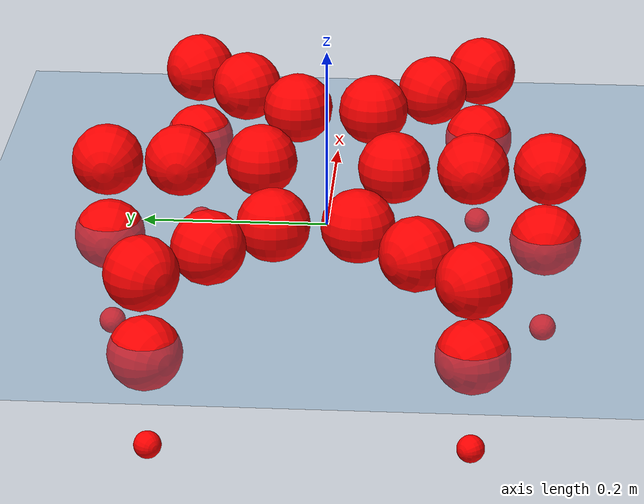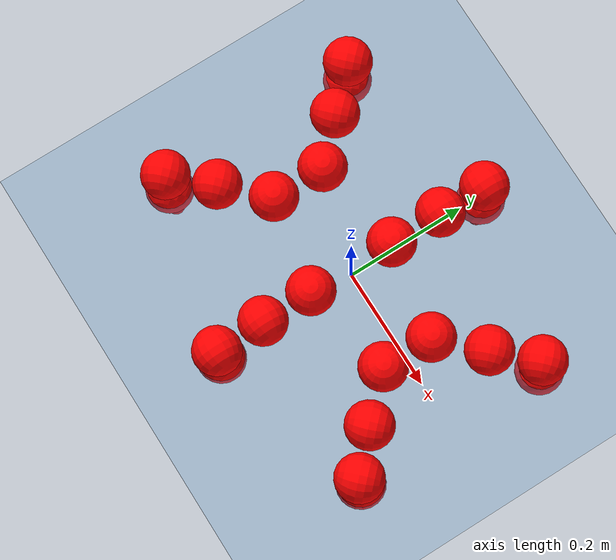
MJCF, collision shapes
<mujoco model="Golem">
  <compiler angle="radian" assetdir="assets" balanceinertia="true" inertiafromgeom="false"/>

  <option timestep="0.005" density="1.2" viscosity="2e-05"/>

  <size nkey="1"/>

  <visual>
    <quality shadowsize="8192"/>
    <map shadowclip="0.5"/>
  </visual>

  <default>
    <default class="/">
      <joint armature="0.01" damping="0.01" frictionloss="0.01"/>
      <geom contype="0" conaffinity="0" group="1" solref="-1000 -80"/>
      <site size="0.01 0.005 0.005" group="5"/>
      <general forcelimited="true" biastype="affine" gainprm="25" biasprm="0 -25 -0.5"/>
      <default class="visual">
        <geom type="mesh" group="2"/>
      </default>
      <default class="collision">
        <geom group="3"/>
      </default>
      <default class="foot">
        <geom size="0.01 0 0" condim="6" group="4" priority="1" solimp="0.015 1 0.01"/>
      </default>
      <default class="reward_collision_sphere">
        <geom group="5" rgba="1 0 0 1"/>
      </default>
    </default>
  </default>

  <asset>
    <texture type="skybox" colorspace="auto" name="//unnamed_texture_0" builtin="gradient" rgb1="0.95 0.95 0.95" rgb2="0.95 0.95 0.95" width="100" height="600"/>
    <texture type="2d" colorspace="auto" name="texplane" builtin="checker" rgb1="0.345 0.575 0.748" rgb2="0.345 0.575 0.748" markrgb="1 1 1" width="512" height="512"/>
    <material name="MatPlane" class="/" texture="texplane" texuniform="true" texrepeat="2 2" specular="0.9"/>
    <mesh name="body" class="/" file="body.stl" scale="0.001 0.001 0.001"/>
    <mesh name="coxa" class="/" file="coxa.stl" scale="0.001 0.001 0.001"/>
    <mesh name="femur" class="/" file="femur.stl" scale="0.001 0.001 0.001"/>
    <mesh name="tibia" class="/" file="tibia.stl" scale="0.001 0.001 0.001"/>
    <mesh name="tarsus" class="/" file="tarsus.stl" scale="0.001 0.001 0.001"/>
  </asset>

  <worldbody>
    <geom name="floor" class="/" size="100 100 0.125" type="plane" group="0" material="MatPlane"/>
    <light name="toplight_shadow" class="/" pos="0 0 5" dir="0.0990148 0.0990148 -0.990148" type="directional" ambient="0.04 0.04 0.04" diffuse="0.55 0.55 0.55" specular="0.12 0.12 0.12"/>
    <light name="toplight_fill" class="/" pos="0 0 5" dir="0.0990148 0.0990148 -0.990148" type="directional" castshadow="false" ambient="0.04 0.04 0.04" diffuse="0.3 0.3 0.3" specular="0.08 0.08 0.08"/>
    <body name="trunk" pos="0.000110126 0.000420213 -0.0026711" quat="1 -1.1689e-05 -3.15134e-06 1.2771e-05">
      <inertial pos="0.000761527 -7.22281e-05 -0.00128002" quat="0.999967 0.00298047 0.00750866 0.000981126" mass="3.46494" diaginertia="0.00884496 0.00267403 0.0211738"/>
      <joint name="//unnamed_joint_0" type="free"/>
      <geom name="//unnamed_geom_1" class="/" pos="0 0 0.074395" quat="1 0 0 0" type="mesh" rgba="0.9 0.9 0.9 1" mesh="body"/>
      <site name="imu" class="/" pos="0.129374 -0.000655427 0.110938" size="0.00969324"/>
      <camera name="track" class="/" pos="0 -1.52851 0" quat="0.707107 0.707107 0 0" mode="trackcom"/>
      <camera name="ego_camera" class="/" pos="0.127568 0 0.116242" quat="-0.5 -0.5 0.5 0.5"/>
      <body name="coxa_RR" pos="-0.174631 -0.0631821 0.0737107" quat="0.382704 0.00015304 -2.75868e-05 -0.923871">
        <inertial pos="-0.000231254 -0.00261328 0.000757136" quat="0.999989 0.000348746 -0.00297588 -0.0034902" mass="0.175684" diaginertia="0.00864251 0.0025985 0.020282"/>
        <joint name="coxa_joint_RR" class="/" pos="0 0 0" axis="-0.00745862 -0.0031407 -0.999967" range="-3.13837 3.11319" armature="0.00941741" damping="0.0124108" frictionloss="0.00959227"/>
        <geom name="//unnamed_geom_2" class="/" type="mesh" rgba="0.2 0.2 0.2 1" mesh="coxa"/>
        <geom name="//unnamed_geom_3" class="reward_collision_sphere" size="0.038773" pos="-0.0294389 0 0"/>
        <body name="femur_RR" pos="0.0591032 -0.000151357 -0.000442744" quat="0.499688 -0.499826 0.500335 0.500151">
          <inertial pos="0.00118489 0.000442546 -0.000380286" quat="0.999999 -0.000289758 0.00013351 -0.00145471" mass="0.181345" diaginertia="0.00908974 0.00259593 0.0210966"/>
          <joint name="femur_joint_RR" class="/" pos="0 0 0" axis="1.14352e-05 -0.00013743 -1" range="-3.16119 3.08819" armature="0.00900724" damping="0" frictionloss="0.0104419"/>
          <geom name="//unnamed_geom_4" class="/" type="mesh" rgba="0.9 0.9 0.9 1" mesh="femur"/>
          <geom name="//unnamed_geom_5" class="reward_collision_sphere" size="0.038773"/>
          <body name="tibia_RR" pos="0.00103937 -0.0808176 0.00250191" quat="5.7368e-05 1 3.13915e-05 3.45972e-05">
            <inertial pos="-0.00225092 -0.000788695 1.21123e-05" quat="0.999959 0.00282255 -0.00640339 -0.00571918" mass="0.181886" diaginertia="0.00896578 0.00262275 0.0215118"/>
            <joint name="tibia_joint_RR" class="/" pos="0 0 0" axis="-0.000331249 -0.000597822 1" range="-3.19254 3.14999" armature="0.00893265" damping="0" frictionloss="0.00973585"/>
            <geom name="//unnamed_geom_6" class="/" type="mesh" rgba="0.2 0.2 0.2 1" mesh="tibia"/>
            <geom name="//unnamed_geom_7" class="reward_collision_sphere" size="0.038773"/>
            <body name="tarsus_RR" pos="0.084493 0.000850122 -0.000277311" quat="1 8.588e-05 0.000468858 -0.000267069">
              <inertial pos="0.057235 0.00285669 -0.00153526" quat="0.5009 0.498596 0.502425 0.498066" mass="0.180409" diaginertia="0.00899125 0.00259316 0.0210733"/>
              <joint name="tarsus_joint_RR" class="/" pos="0 0 0" axis="-0.000643691 -0.00197369 0.999998" range="-3.14757 3.13866" armature="0.0106078" damping="0.00650333" frictionloss="0.0106508"/>
              <geom name="//unnamed_geom_8" class="/" type="mesh" rgba="0.9 0.9 0.9 1" mesh="tarsus"/>
              <geom name="foot_1" class="foot" size="0.00904395" pos="0.109905 0 0" quat="0 -0.707107 0 0.707107"/>
              <geom name="//unnamed_geom_10" class="reward_collision_sphere" size="0.038773"/>
              <geom name="//unnamed_geom_11" class="reward_collision_sphere" size="0.0145399" pos="0.105489 0 0"/>
              <site name="foot_1" class="foot" pos="0.109905 0 0" quat="0 -0.707107 0 0.707107" size="0.00969324"/>
            </body>
          </body>
        </body>
      </body>
      <body name="coxa_RM" pos="-0.000123151 -0.101892 0.0721828" quat="0.707155 -0.000949486 0.000989342 -0.707057">
        <inertial pos="-0.00227342 8.2758e-05 0.000532931" quat="0.999998 -0.000906765 -0.00161542 -0.000452345" mass="0.179083" diaginertia="0.00889687 0.00255532 0.0215194"/>
        <joint name="coxa_joint_RM" class="/" pos="0 0 0" axis="-0.00108126 -0.000250031 -0.999999" range="-3.19311 3.14643" armature="0.010155" damping="0.00890386" frictionloss="0.0097438"/>
        <geom name="//unnamed_geom_12" class="/" type="mesh" rgba="0.2 0.2 0.2 1" mesh="coxa"/>
        <geom name="//unnamed_geom_13" class="reward_collision_sphere" size="0.038773" pos="-0.0294389 0 0"/>
        <body name="femur_RM" pos="0.0556084 0.00084877 0.000530074" quat="0.499436 -0.500916 0.49948 0.500167">
          <inertial pos="-0.000174337 0.000388922 -0.000523334" quat="0.999927 -0.0092434 0.00599445 -0.00497738" mass="0.187365" diaginertia="0.00934633 0.00260977 0.0216856"/>
          <joint name="femur_joint_RM" class="/" pos="0 0 0" axis="0.00252971 3.35167e-05 -0.999997" range="-3.14592 3.14535" armature="0.00960839" damping="0.00896341" frictionloss="0.00996651"/>
          <geom name="//unnamed_geom_14" class="/" type="mesh" rgba="0.9 0.9 0.9 1" mesh="femur"/>
          <geom name="//unnamed_geom_15" class="reward_collision_sphere" size="0.038773"/>
          <body name="tibia_RM" pos="-0.00115822 -0.0820877 0.00184836" quat="0.000341496 1 -7.72978e-05 -0.000153045">
            <inertial pos="0.000993085 0.00221506 0.000616627" quat="0.999987 -0.00180496 0.00257788 0.00389743" mass="0.187935" diaginertia="0.00945922 0.00269559 0.0220806"/>
            <joint name="tibia_joint_RM" class="/" pos="0 0 0" axis="-0.00173291 0.00220225 0.999996" range="-3.11142 3.08723" armature="0.0097824" damping="0" frictionloss="0.00994482"/>
            <geom name="//unnamed_geom_16" class="/" type="mesh" rgba="0.2 0.2 0.2 1" mesh="tibia"/>
            <geom name="//unnamed_geom_17" class="reward_collision_sphere" size="0.038773"/>
            <body name="tarsus_RM" pos="0.0833248 -0.0026565 0.00099219" quat="1 0.000150409 -0.000727138 0.000370899">
              <inertial pos="0.0585039 0.00306058 -0.000584505" quat="0.500467 0.499888 0.49869 0.500953" mass="0.172528" diaginertia="0.0089496 0.00252416 0.0207757"/>
              <joint name="tarsus_joint_RM" class="/" pos="0 0 0" axis="-0.00268569 -0.000466467 0.999996" range="-3.14546 3.15603" armature="0.010026" damping="0.00308827" frictionloss="0.00966192"/>
              <geom name="//unnamed_geom_18" class="/" type="mesh" rgba="0.9 0.9 0.9 1" mesh="tarsus"/>
              <geom name="foot_2" class="foot" size="0.00952474" pos="0.109905 0 0" quat="0 -0.707107 0 0.707107"/>
              <geom name="//unnamed_geom_20" class="reward_collision_sphere" size="0.038773"/>
              <geom name="//unnamed_geom_21" class="reward_collision_sphere" size="0.0145399" pos="0.105489 0 0"/>
              <site name="foot_2" class="foot" pos="0.109905 0 0" quat="0 -0.707107 0 0.707107" size="0.00969324"/>
            </body>
          </body>
        </body>
      </body>
      <body name="coxa_RF" pos="0.1764 -0.0634768 0.0736908" quat="0.923772 0.000123606 -0.000671927 -0.382941">
        <inertial pos="-0.00248717 -0.00114671 0.00234701" quat="0.999995 -0.000874798 -0.00161561 0.00263948" mass="0.185804" diaginertia="0.00926114 0.00260498 0.0215579"/>
        <joint name="coxa_joint_RF" class="/" pos="0 0 0" axis="0.000156158 0.000458997 -1" range="-3.15539 3.13691" armature="0.00863046" damping="0.00887098" frictionloss="0.0101847"/>
        <geom name="//unnamed_geom_22" class="/" type="mesh" rgba="0.2 0.2 0.2 1" mesh="coxa"/>
        <geom name="//unnamed_geom_23" class="reward_collision_sphere" size="0.038773" pos="-0.0294389 0 0"/>
        <body name="femur_RF" pos="0.0605847 -0.000585553 -0.00124229" quat="0.500402 -0.500758 0.499649 0.49919">
          <inertial pos="0.000617364 -5.15335e-05 -0.000114936" quat="0.999999 -0.0002005 -0.000923405 -0.00087364" mass="0.17106" diaginertia="0.00908764 0.0025514 0.0203377"/>
          <joint name="femur_joint_RF" class="/" pos="0 0 0" axis="0.00185489 -0.000465972 -0.999998" range="-3.15085 3.08577" armature="0.00852453" damping="0" frictionloss="0.00839949"/>
          <geom name="//unnamed_geom_24" class="/" type="mesh" rgba="0.9 0.9 0.9 1" mesh="femur"/>
          <geom name="//unnamed_geom_25" class="reward_collision_sphere" size="0.038773"/>
          <body name="tibia_RF" pos="-0.00115342 -0.079882 0.00259758" quat="2.99243e-05 1 -2.07198e-05 -1.15251e-05">
            <inertial pos="-0.00239809 0.000902823 -0.000135974" quat="0.999997 -0.00212635 -0.00137626 -0.000532201" mass="0.179861" diaginertia="0.00874679 0.0025699 0.0209378"/>
            <joint name="tibia_joint_RF" class="/" pos="0 0 0" axis="-0.00456233 -0.000217849 0.99999" range="-3.11956 3.14706" armature="0.00955542" damping="0" frictionloss="0.0100573"/>
            <geom name="//unnamed_geom_26" class="/" type="mesh" rgba="0.2 0.2 0.2 1" mesh="tibia"/>
            <geom name="//unnamed_geom_27" class="reward_collision_sphere" size="0.038773"/>
            <body name="tarsus_RF" pos="0.0845429 -0.000787887 -0.00239155" quat="1 0.000302 -0.000485285 0.000523625">
              <inertial pos="0.0566468 -0.000662546 -0.000681628" quat="0.492488 0.494573 0.504716 0.508051" mass="0.179545" diaginertia="0.00909828 0.00265091 0.0204703"/>
              <joint name="tarsus_joint_RF" class="/" pos="0 0 0" axis="0.00438021 0.000341626 0.99999" range="-3.11987 3.13545" armature="0.00839411" damping="0.000845423" frictionloss="0.00855494"/>
              <geom name="//unnamed_geom_28" class="/" type="mesh" rgba="0.9 0.9 0.9 1" mesh="tarsus"/>
              <geom name="foot_3" class="foot" size="0.00953465" pos="0.109905 0 0" quat="0 -0.707107 0 0.707107"/>
              <geom name="//unnamed_geom_30" class="reward_collision_sphere" size="0.038773"/>
              <geom name="//unnamed_geom_31" class="reward_collision_sphere" size="0.0145399" pos="0.105489 0 0"/>
              <site name="foot_3" class="foot" pos="0.109905 0 0" quat="0 -0.707107 0 0.707107" size="0.00969324"/>
            </body>
          </body>
        </body>
      </body>
      <body name="coxa_LR" pos="-0.174941 0.0659091 0.0725758" quat="0.382436 0.000154048 0.000148881 0.923982">
        <inertial pos="-0.000447978 -0.000626596 0.000153279" quat="0.999912 -0.0035057 0.00173701 0.012696" mass="0.183237" diaginertia="0.00909398 0.00266691 0.0211983"/>
        <joint name="coxa_joint_LR" class="/" pos="0 0 0" axis="-0.0039426 0.000113919 -0.999992" stiffness="0.000103991" range="-3.14398 3.1389" armature="0.010709" damping="0.0151827" frictionloss="0.00933371"/>
        <geom name="//unnamed_geom_32" class="/" type="mesh" rgba="0.2 0.2 0.2 1" mesh="coxa"/>
        <geom name="//unnamed_geom_33" class="reward_collision_sphere" size="0.038773" pos="-0.0294389 0 0"/>
        <body name="femur_LR" pos="0.0573969 0.000271963 0.0015118" quat="0.500229 -0.499661 0.500466 0.499644">
          <inertial pos="-0.00237813 -0.0026799 0.0024549" quat="1 0.000541491 -0.000195279 3.52001e-05" mass="0.188909" diaginertia="0.00917482 0.00270008 0.0215484"/>
          <joint name="femur_joint_LR" class="/" pos="0 0 0" axis="0.0058515 0.0131749 0.999896" range="-3.17118 3.10198" armature="0.0109446" damping="0" frictionloss="0.00858349"/>
          <geom name="//unnamed_geom_34" class="/" type="mesh" rgba="0.9 0.9 0.9 1" mesh="femur"/>
          <geom name="//unnamed_geom_35" class="reward_collision_sphere" size="0.038773"/>
          <body name="tibia_LR" pos="0.00173383 -0.0859069 -0.000680145" quat="-0.000112454 1 -2.92286e-05 7.97716e-06">
            <inertial pos="-5.84788e-05 -0.00255875 -0.000181644" quat="0.999999 -0.000600058 0.00123073 -0.000577229" mass="0.174263" diaginertia="0.00881653 0.0025718 0.0201036"/>
            <joint name="tibia_joint_LR" class="/" pos="0 0 0" axis="-0.0119296 -0.000556565 -0.999929" range="-3.1451 3.08874" armature="0.00965528" damping="0" frictionloss="0.0104195"/>
            <geom name="//unnamed_geom_36" class="/" type="mesh" rgba="0.2 0.2 0.2 1" mesh="tibia"/>
            <geom name="//unnamed_geom_37" class="reward_collision_sphere" size="0.038773"/>
            <body name="tarsus_LR" pos="0.0896048 -0.00129112 -0.000688829" quat="1 0.00053408 0.000353735 0.000168926">
              <inertial pos="0.0595808 0.000343319 -0.00181048" quat="0.498439 0.500381 0.499139 0.502034" mass="0.178767" diaginertia="0.0091117 0.00262374 0.0208541"/>
              <joint name="tarsus_joint_LR" class="/" pos="0 0 0" axis="-0.000110393 -0.00190393 -0.999998" range="-3.18024 3.14242" armature="0.0085937" damping="0.0276991" frictionloss="0.00942288"/>
              <geom name="//unnamed_geom_38" class="/" type="mesh" rgba="0.9 0.9 0.9 1" mesh="tarsus"/>
              <geom name="foot_4" class="foot" size="0.00981657" pos="0.109905 0 0" quat="0.707107 0 -0.707107 0"/>
              <geom name="//unnamed_geom_40" class="reward_collision_sphere" size="0.038773"/>
              <geom name="//unnamed_geom_41" class="reward_collision_sphere" size="0.0145399" pos="0.105489 0 0"/>
              <site name="foot_4" class="foot" pos="0.109905 0 0" quat="0.707107 0 -0.707107 0" size="0.00969324"/>
            </body>
          </body>
        </body>
      </body>
      <body name="coxa_LM" pos="0.00217144 0.099683 0.0762259" quat="0.707297 0.0001208 -0.000158533 0.706916">
        <inertial pos="0.00148426 -0.000834447 1.03261e-05" quat="0.999998 0.000176175 -0.000341601 -0.00178526" mass="0.176081" diaginertia="0.00930458 0.00259936 0.0208466"/>
        <joint name="coxa_joint_LM" class="/" pos="0 0 0" axis="-0.00378884 0.011189 -0.99993" range="-3.14211 3.19247" armature="0.0096286" damping="0.00718962" frictionloss="0.009706"/>
        <geom name="//unnamed_geom_42" class="/" type="mesh" rgba="0.2 0.2 0.2 1" mesh="coxa"/>
        <geom name="//unnamed_geom_43" class="reward_collision_sphere" size="0.038773" pos="-0.0294389 0 0"/>
        <body name="femur_LM" pos="0.0582514 0.000203246 -0.00252045" quat="0.500131 -0.500833 0.499957 0.499078">
          <inertial pos="0.00180312 0.000558479 -0.00151245" quat="0.999999 0.000812447 -0.000992012 0.000808826" mass="0.193029" diaginertia="0.00945408 0.00267851 0.0223253"/>
          <joint name="femur_joint_LM" class="/" pos="0 0 0" axis="-0.00777145 0.00134617 0.999969" stiffness="0.0113244" range="-3.19229 3.08766" armature="0.00932659" damping="0.00225486" frictionloss="0.0104175"/>
          <geom name="//unnamed_geom_44" class="/" type="mesh" rgba="0.9 0.9 0.9 1" mesh="femur"/>
          <geom name="//unnamed_geom_45" class="reward_collision_sphere" size="0.038773"/>
          <body name="tibia_LM" pos="0.00189264 -0.0793787 -0.000929041" quat="0.000148031 1 -0.000454841 1.83777e-05">
            <inertial pos="0.00154835 -0.00118283 0.000587818" quat="0.999995 0.00299535 -0.00103248 0.000339375" mass="0.183199" diaginertia="0.00918263 0.00254649 0.0216788"/>
            <joint name="tibia_joint_LM" class="/" pos="0 0 0" axis="-0.00155841 -0.00618834 -0.99998" range="-3.15004 3.13461" armature="0.00848587" damping="0" frictionloss="0.00946329"/>
            <geom name="//unnamed_geom_46" class="/" type="mesh" rgba="0.2 0.2 0.2 1" mesh="tibia"/>
            <geom name="//unnamed_geom_47" class="reward_collision_sphere" size="0.038773"/>
            <body name="tarsus_LM" pos="0.088501 -0.000415104 -0.000942344" quat="1 0.000144938 7.05582e-05 -9.09418e-05">
              <inertial pos="0.0595188 0.000167406 0.00212996" quat="0.500755 0.499597 0.500161 0.499486" mass="0.182204" diaginertia="0.0087899 0.00267534 0.0212729"/>
              <joint name="tarsus_joint_LM" class="/" pos="0 0 0" axis="-0.00198851 -0.00156181 -0.999997" range="-3.12177 3.15139" armature="0.00964868" damping="0.00592222" frictionloss="0.00977043"/>
              <geom name="//unnamed_geom_48" class="/" type="mesh" rgba="0.9 0.9 0.9 1" mesh="tarsus"/>
              <geom name="foot_5" class="foot" size="0.00879543" pos="0.109905 0 0" quat="0.707107 0 -0.707107 0"/>
              <geom name="//unnamed_geom_50" class="reward_collision_sphere" size="0.038773"/>
              <geom name="//unnamed_geom_51" class="reward_collision_sphere" size="0.0145399" pos="0.105489 0 0"/>
              <site name="foot_5" class="foot" pos="0.109905 0 0" quat="0.707107 0 -0.707107 0" size="0.00969324"/>
            </body>
          </body>
        </body>
      </body>
      <body name="coxa_LF" pos="0.177147 0.0628519 0.0732803" quat="0.923444 -0.000519395 -0.000416569 0.383732">
        <inertial pos="0.000544364 -0.000197756 0.00222119" quat="0.999986 0.0042543 0.002999 -0.000416943" mass="0.182417" diaginertia="0.00927401 0.00253598 0.0212934"/>
        <joint name="coxa_joint_LF" class="/" pos="0 0 0" axis="-0.0121293 -0.00661475 -0.999905" range="-3.15903 3.13367" armature="0.00959328" damping="0.0126127" frictionloss="0.00862247"/>
        <geom name="//unnamed_geom_52" class="/" type="mesh" rgba="0.2 0.2 0.2 1" mesh="coxa"/>
        <geom name="//unnamed_geom_53" class="reward_collision_sphere" size="0.038773" pos="-0.0294389 0 0"/>
        <body name="femur_LF" pos="0.0596429 -7.91743e-05 -0.00103237" quat="0.500137 -0.499958 0.499888 0.500017">
          <inertial pos="-0.000416192 0.000208354 0.00261102" quat="0.999972 -0.0061511 0.00334189 0.00247752" mass="0.187723" diaginertia="0.00885828 0.00263741 0.0212108"/>
          <joint name="femur_joint_LF" class="/" pos="0 0 0" axis="0.00692497 -0.00816084 0.999943" stiffness="0.00145531" range="-3.14664 3.13499" armature="0.00981891" damping="0.00915409" frictionloss="0.0108794"/>
          <geom name="//unnamed_geom_54" class="/" type="mesh" rgba="0.9 0.9 0.9 1" mesh="femur"/>
          <geom name="//unnamed_geom_55" class="reward_collision_sphere" size="0.038773"/>
          <body name="tibia_LF" pos="0.00113275 -0.0809404 0.00259637" quat="0.000419821 0.999999 -0.00119991 -0.000315636">
            <inertial pos="-0.000931846 0.00104113 -0.00234513" quat="0.999912 0.0107191 0.00748905 -0.00201827" mass="0.189719" diaginertia="0.00926868 0.00261485 0.0212333"/>
            <joint name="tibia_joint_LF" class="/" pos="0 0 0" axis="-0.000154195 -0.000245896 -1" range="-3.08751 3.13754" armature="0.0097884" damping="0.0155885" frictionloss="0.00970327"/>
            <geom name="//unnamed_geom_56" class="/" type="mesh" rgba="0.2 0.2 0.2 1" mesh="tibia"/>
            <geom name="//unnamed_geom_57" class="reward_collision_sphere" size="0.038773"/>
            <body name="tarsus_LF" pos="0.0889561 0.0026676 -0.000368351" quat="1 -6.97885e-05 -8.75621e-05 2.48353e-05">
              <inertial pos="0.056571 0.000926346 0.000146567" quat="0.500133 0.500399 0.499505 0.499964" mass="0.176705" diaginertia="0.00886823 0.00252403 0.0214144"/>
              <joint name="tarsus_joint_LF" class="/" pos="0 0 0" axis="0.0118388 -0.00631129 -0.99991" range="-3.13195 3.09496" armature="0.0109831" damping="0.00815122" frictionloss="0.0109822"/>
              <geom name="//unnamed_geom_58" class="/" type="mesh" rgba="0.9 0.9 0.9 1" mesh="tarsus"/>
              <geom name="foot_6" class="foot" size="0.00921229" pos="0.109905 0 0" quat="0.707107 0 -0.707107 0"/>
              <geom name="//unnamed_geom_60" class="reward_collision_sphere" size="0.038773"/>
              <geom name="//unnamed_geom_61" class="reward_collision_sphere" size="0.0145399" pos="0.105489 0 0"/>
              <site name="foot_6" class="foot" pos="0.109905 0 0" quat="0.707107 0 -0.707107 0" size="0.00969324"/>
            </body>
          </body>
        </body>
      </body>
    </body>
  </worldbody>

  <contact>
    <pair class="/" geom1="floor" geom2="foot_1" name="//unnamed_contact_0"/>
    <pair class="/" geom1="floor" geom2="foot_2" name="//unnamed_contact_1"/>
    <pair class="/" geom1="floor" geom2="foot_3" name="//unnamed_contact_2"/>
    <pair class="/" geom1="floor" geom2="foot_4" name="//unnamed_contact_3"/>
    <pair class="/" geom1="floor" geom2="foot_5" name="//unnamed_contact_4"/>
    <pair class="/" geom1="floor" geom2="foot_6" name="//unnamed_contact_5"/>
  </contact>

  <actuator>
    <general name="coxa_joint_RR" class="/" joint="coxa_joint_RR" forcerange="-7.35771 7.35771" gainprm="23.2046" biasprm="0 -23.2046 -0.499281"/>
    <general name="femur_joint_RR" class="/" joint="femur_joint_RR" forcerange="-7.54581 7.54581" gainprm="23.2046" biasprm="0 -23.2046 -0.499281"/>
    <general name="tibia_joint_RR" class="/" joint="tibia_joint_RR" forcerange="-6.56522 6.56522" gainprm="23.2046" biasprm="0 -23.2046 -0.499281"/>
    <general name="tarsus_joint_RR" class="/" joint="tarsus_joint_RR" forcerange="-6.49329 6.49329" gainprm="23.2046" biasprm="0 -23.2046 -0.499281"/>
    <general name="coxa_joint_RM" class="/" joint="coxa_joint_RM" forcerange="-6.38548 6.38548" gainprm="23.2046" biasprm="0 -23.2046 -0.499281"/>
    <general name="femur_joint_RM" class="/" joint="femur_joint_RM" forcerange="-6.85583 6.85583" gainprm="23.2046" biasprm="0 -23.2046 -0.499281"/>
    <general name="tibia_joint_RM" class="/" joint="tibia_joint_RM" forcerange="-7.07711 7.07711" gainprm="23.2046" biasprm="0 -23.2046 -0.499281"/>
    <general name="tarsus_joint_RM" class="/" joint="tarsus_joint_RM" forcerange="-6.93117 6.93117" gainprm="23.2046" biasprm="0 -23.2046 -0.499281"/>
    <general name="coxa_joint_RF" class="/" joint="coxa_joint_RF" forcerange="-7.10532 7.10532" gainprm="23.2046" biasprm="0 -23.2046 -0.499281"/>
    <general name="femur_joint_RF" class="/" joint="femur_joint_RF" forcerange="-7.77726 7.77726" gainprm="23.2046" biasprm="0 -23.2046 -0.499281"/>
    <general name="tibia_joint_RF" class="/" joint="tibia_joint_RF" forcerange="-7.77587 7.77587" gainprm="23.2046" biasprm="0 -23.2046 -0.499281"/>
    <general name="tarsus_joint_RF" class="/" joint="tarsus_joint_RF" forcerange="-7.74609 7.74609" gainprm="23.2046" biasprm="0 -23.2046 -0.499281"/>
    <general name="coxa_joint_LR" class="/" joint="coxa_joint_LR" forcerange="-7.12486 7.12486" gainprm="23.2046" biasprm="0 -23.2046 -0.499281"/>
    <general name="femur_joint_LR" class="/" joint="femur_joint_LR" forcerange="-7.09928 7.09928" gainprm="23.2046" biasprm="0 -23.2046 -0.499281"/>
    <general name="tibia_joint_LR" class="/" joint="tibia_joint_LR" forcerange="-7.78461 7.78461" gainprm="23.2046" biasprm="0 -23.2046 -0.499281"/>
    <general name="tarsus_joint_LR" class="/" joint="tarsus_joint_LR" forcerange="-7.77404 7.77404" gainprm="23.2046" biasprm="0 -23.2046 -0.499281"/>
    <general name="coxa_joint_LM" class="/" joint="coxa_joint_LM" forcerange="-7.2153 7.2153" gainprm="23.2046" biasprm="0 -23.2046 -0.499281"/>
    <general name="femur_joint_LM" class="/" joint="femur_joint_LM" forcerange="-7.10058 7.10058" gainprm="23.2046" biasprm="0 -23.2046 -0.499281"/>
    <general name="tibia_joint_LM" class="/" joint="tibia_joint_LM" forcerange="-7.08693 7.08693" gainprm="23.2046" biasprm="0 -23.2046 -0.499281"/>
    <general name="tarsus_joint_LM" class="/" joint="tarsus_joint_LM" forcerange="-7.21107 7.21107" gainprm="23.2046" biasprm="0 -23.2046 -0.499281"/>
    <general name="coxa_joint_LF" class="/" joint="coxa_joint_LF" forcerange="-7.11678 7.11678" gainprm="23.2046" biasprm="0 -23.2046 -0.499281"/>
    <general name="femur_joint_LF" class="/" joint="femur_joint_LF" forcerange="-7.73003 7.73003" gainprm="23.2046" biasprm="0 -23.2046 -0.499281"/>
    <general name="tibia_joint_LF" class="/" joint="tibia_joint_LF" forcerange="-7.6795 7.6795" gainprm="23.2046" biasprm="0 -23.2046 -0.499281"/>
    <general name="tarsus_joint_LF" class="/" joint="tarsus_joint_LF" forcerange="-7.08133 7.08133" gainprm="23.2046" biasprm="0 -23.2046 -0.499281"/>
  </actuator>

  <sensor>
    <gyro site="imu" name="imu_angular_velocity"/>
    <velocimeter site="imu" name="imu_linear_velocity"/>
    <framelinvel objtype="site" objname="foot_1" name="foot_1_global_linear_velocity"/>
    <framelinvel objtype="site" objname="foot_2" name="foot_2_global_linear_velocity"/>
    <framelinvel objtype="site" objname="foot_3" name="foot_3_global_linear_velocity"/>
    <framelinvel objtype="site" objname="foot_4" name="foot_4_global_linear_velocity"/>
    <framelinvel objtype="site" objname="foot_5" name="foot_5_global_linear_velocity"/>
    <framelinvel objtype="site" objname="foot_6" name="foot_6_global_linear_velocity"/>
  </sensor>

  <keyframe>
    <key name="home" qpos="0 0 0.1457 1 0 0 0 0 0 0 0 0 0 0 0 0 0 0 0 0 0 0 0 0 0 0 0 0 0 0 0"/>
  </keyframe>
</mujoco>
